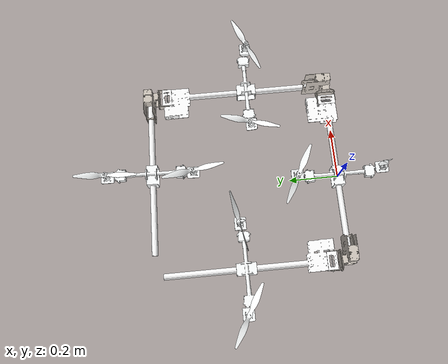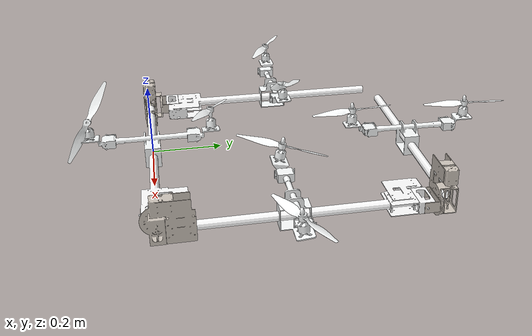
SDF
<sdf version='1.11'>
  <model name='dragon'>
    <static>true</static>
    <link name='base_link'>
      <gravity>false</gravity>
      <inertial>
        <pose>0.094083375991619769 0.31392124549819073 0.02355789200391184 0 0 0</pose>
        <mass>3.2123976475049201</mass>
        <inertia>
          <ixx>0.28615501559474132</ixx>
          <ixy>-0.076412822410160119</ixy>
          <ixz>0.0014552482556793301</ixz>
          <iyy>0.29996932674844812</iyy>
          <iyz>-0.001932335490017784</iyz>
          <izz>0.58140284867119696</izz>
        </inertia>
      </inertial>
      <collision name='base_link_collision'>
        <pose>0 0 0 0 0 0</pose>
        <geometry>
          <mesh>
            <scale>1 1 1</scale>
            <uri>model://serial-articulated/meshes/base_link.STL</uri>
          </mesh>
        </geometry>
      </collision>
      <collision name='base_link_fixed_joint_lump__joint1_pitch_collision_1'>
        <pose>0.41105000000000003 0.751 -0.042411999999999998 0 0.0012441000000000002 3.1415853071795872</pose>
        <geometry>
          <mesh>
            <scale>1 1 1</scale>
            <uri>model://serial-articulated/meshes/joint1_pitch.STL</uri>
          </mesh>
        </geometry>
      </collision>
      <collision name='base_link_fixed_joint_lump__joint1_yaw_collision_2'>
        <pose>0.45349657127694659 0.67999968816815959 0.0001408413459373786 1.570844099999992 -4.5698332895582894e-09 -1.570800000002843</pose>
        <geometry>
          <mesh>
            <scale>1 1 1</scale>
            <uri>model://serial-articulated/meshes/joint1_yaw.STL</uri>
          </mesh>
        </geometry>
      </collision>
      <collision name='base_link_fixed_joint_lump__Joint2_pitch_collision_3'>
        <pose>0.41104910643746267 -1.561125325677537e-07 -0.042414183327252913 -3.141541207179595 -4.569833366160561e-09 -1.5708000000028433</pose>
        <geometry>
          <mesh>
            <scale>1 1 1</scale>
            <uri>model://serial-articulated/meshes/Joint2_pitch.STL</uri>
          </mesh>
        </geometry>
      </collision>
      <collision name='base_link_fixed_joint_lump__joint2_yaw_collision_4'>
        <pose>0.33999376847548579 -0.042499894917988217 -5.8386109438382516e-06 1.570792657970653 5.1446410214871967e-05 3.1415853071769742</pose>
        <geometry>
          <mesh>
            <scale>1 1 1</scale>
            <uri>model://serial-articulated/meshes/joint2_yaw.STL</uri>
          </mesh>
        </geometry>
      </collision>
      <collision name='base_link_fixed_joint_lump__joint3_pitch_collision_5'>
        <pose>-0.34000373191817418 5.2565502569601463e-06 -0.042540666188315653 7.3420293452184246e-06 -4.4100000008085954e-05 -7.3463858662453209e-06</pose>
        <geometry>
          <mesh>
            <scale>1 1 1</scale>
            <uri>model://serial-articulated/meshes/joint3_pitch.STL</uri>
          </mesh>
        </geometry>
      </collision>
      <collision name='base_link_fixed_joint_lump__joint3_yaw_collision_6'>
        <pose>-0.38250508455758409 0.071005256745348522 -4.2019196704767843e-05 1.5707558999730218 -7.3418673495855403e-06 1.570792653937914</pose>
        <geometry>
          <mesh>
            <scale>1 1 1</scale>
            <uri>model://serial-articulated/meshes/joint3_yaw.STL</uri>
          </mesh>
        </geometry>
      </collision>
      <collision name='base_link_fixed_joint_lump__link4_arm_roll_collision_7'>
        <pose>-0.44000565494703281 0.41100513756288598 0.044958152457951851 -1.570724063884311 -0.97708531051172465 -1.5708598965289029</pose>
        <geometry>
          <mesh>
            <scale>1 1 1</scale>
            <uri>model://serial-articulated/meshes/link4_arm_roll.STL</uri>
          </mesh>
        </geometry>
      </collision>
      <collision name='base_link_fixed_joint_lump__link3_arm_roll_collision_8'>
        <pose>-7.4993181363725006e-06 0.1000024377774794 0.044977192357190332 -1.5707933537916741 -0.57554855358541879 3.1415876877894982</pose>
        <geometry>
          <mesh>
            <scale>1 1 1</scale>
            <uri>model://serial-articulated/meshes/link3_arm_roll.STL</uri>
          </mesh>
        </geometry>
      </collision>
      <collision name='base_link_fixed_joint_lump__link2_arm_roll_collision_9'>
        <pose>0.52060298715257469 -0.34000055835008391 -0.003260047929155345 2.2087640015835199 0.87206879575160012 -1.0545058706842991</pose>
        <geometry>
          <mesh>
            <scale>1 1 1</scale>
            <uri>model://serial-articulated/meshes/link2_arm_roll.STL</uri>
          </mesh>
        </geometry>
      </collision>
      <collision name='base_link_fixed_joint_lump__link1_arm_roll_collision_10'>
        <pose>0.751 -0.65100000000000002 0.044999999999999998 -1.5707999999999995 -0.97713000000000028 -3.1415853071795872</pose>
        <geometry>
          <mesh>
            <scale>1 1 1</scale>
            <uri>model://serial-articulated/meshes/link1_arm_roll.STL</uri>
          </mesh>
        </geometry>
      </collision>
      <visual name='base_link_visual'>
        <pose>0 0 0 0 0 0</pose>
        <geometry>
          <mesh>
            <scale>1 1 1</scale>
            <uri>model://serial-articulated/meshes/base_link.STL</uri>
          </mesh>
        </geometry>
        <material>
          <diffuse>1 1 1 1</diffuse>
          <ambient>1 1 1 1</ambient>
        </material>
      </visual>
      <visual name='base_link_fixed_joint_lump__joint1_pitch_visual_1'>
        <pose>0.41105000000000003 0.751 -0.042411999999999998 0 0.0012441000000000002 3.1415853071795872</pose>
        <geometry>
          <mesh>
            <scale>1 1 1</scale>
            <uri>model://serial-articulated/meshes/joint1_pitch.STL</uri>
          </mesh>
        </geometry>
        <material>
          <diffuse>0.808823526 0.774509847 0.735294163 1</diffuse>
          <ambient>0.808823526 0.774509847 0.735294163 1</ambient>
        </material>
      </visual>
      <visual name='base_link_fixed_joint_lump__joint1_yaw_visual_2'>
        <pose>0.45349657127694659 0.67999968816815959 0.0001408413459373786 1.570844099999992 -4.5698332895582894e-09 -1.570800000002843</pose>
        <geometry>
          <mesh>
            <scale>1 1 1</scale>
            <uri>model://serial-articulated/meshes/joint1_yaw.STL</uri>
          </mesh>
        </geometry>
        <material>
          <diffuse>1 1 1 1</diffuse>
          <ambient>1 1 1 1</ambient>
        </material>
      </visual>
      <visual name='base_link_fixed_joint_lump__Joint2_pitch_visual_3'>
        <pose>0.41104910643746267 -1.561125325677537e-07 -0.042414183327252913 -3.141541207179595 -4.569833366160561e-09 -1.5708000000028433</pose>
        <geometry>
          <mesh>
            <scale>1 1 1</scale>
            <uri>model://serial-articulated/meshes/Joint2_pitch.STL</uri>
          </mesh>
        </geometry>
        <material>
          <diffuse>0.808823526 0.774509847 0.735294163 1</diffuse>
          <ambient>0.808823526 0.774509847 0.735294163 1</ambient>
        </material>
      </visual>
      <visual name='base_link_fixed_joint_lump__joint2_yaw_visual_4'>
        <pose>0.33999376847548579 -0.042499894917988217 -5.8386109438382516e-06 1.570792657970653 5.1446410214871967e-05 3.1415853071769742</pose>
        <geometry>
          <mesh>
            <scale>1 1 1</scale>
            <uri>model://serial-articulated/meshes/joint2_yaw.STL</uri>
          </mesh>
        </geometry>
        <material>
          <diffuse>1 1 1 1</diffuse>
          <ambient>1 1 1 1</ambient>
        </material>
      </visual>
      <visual name='base_link_fixed_joint_lump__joint3_pitch_visual_5'>
        <pose>-0.34000373191817418 5.2565502569601463e-06 -0.042540666188315653 7.3420293452184246e-06 -4.4100000008085954e-05 -7.3463858662453209e-06</pose>
        <geometry>
          <mesh>
            <scale>1 1 1</scale>
            <uri>model://serial-articulated/meshes/joint3_pitch.STL</uri>
          </mesh>
        </geometry>
        <material>
          <diffuse>0.808823526 0.774509847 0.735294163 1</diffuse>
          <ambient>0.808823526 0.774509847 0.735294163 1</ambient>
        </material>
      </visual>
      <visual name='base_link_fixed_joint_lump__joint3_yaw_visual_6'>
        <pose>-0.38250508455758409 0.071005256745348522 -4.2019196704767843e-05 1.5707558999730218 -7.3418673495855403e-06 1.570792653937914</pose>
        <geometry>
          <mesh>
            <scale>1 1 1</scale>
            <uri>model://serial-articulated/meshes/joint3_yaw.STL</uri>
          </mesh>
        </geometry>
        <material>
          <diffuse>1 1 1 1</diffuse>
          <ambient>1 1 1 1</ambient>
        </material>
      </visual>
      <visual name='base_link_fixed_joint_lump__link4_arm_roll_visual_7'>
        <pose>-0.44000565494703281 0.41100513756288598 0.044958152457951851 -1.570724063884311 -0.97708531051172465 -1.5708598965289029</pose>
        <geometry>
          <mesh>
            <scale>1 1 1</scale>
            <uri>model://serial-articulated/meshes/link4_arm_roll.STL</uri>
          </mesh>
        </geometry>
        <material>
          <diffuse>0.990196109 1 1 1</diffuse>
          <ambient>0.990196109 1 1 1</ambient>
        </material>
      </visual>
      <visual name='base_link_fixed_joint_lump__link3_arm_roll_visual_8'>
        <pose>-7.4993181363725006e-06 0.1000024377774794 0.044977192357190332 -1.5707933537916741 -0.57554855358541879 3.1415876877894982</pose>
        <geometry>
          <mesh>
            <scale>1 1 1</scale>
            <uri>model://serial-articulated/meshes/link3_arm_roll.STL</uri>
          </mesh>
        </geometry>
        <material>
          <diffuse>0.990196109 1 1 1</diffuse>
          <ambient>0.990196109 1 1 1</ambient>
        </material>
      </visual>
      <visual name='base_link_fixed_joint_lump__link2_arm_roll_visual_9'>
        <pose>0.52060298715257469 -0.34000055835008391 -0.003260047929155345 2.2087640015835199 0.87206879575160012 -1.0545058706842991</pose>
        <geometry>
          <mesh>
            <scale>1 1 1</scale>
            <uri>model://serial-articulated/meshes/link2_arm_roll.STL</uri>
          </mesh>
        </geometry>
        <material>
          <diffuse>0.990196109 1 1 1</diffuse>
          <ambient>0.990196109 1 1 1</ambient>
        </material>
      </visual>
      <visual name='base_link_fixed_joint_lump__link1_arm_roll_visual_10'>
        <pose>0.751 -0.65100000000000002 0.044999999999999998 -1.5707999999999995 -0.97713000000000028 -3.1415853071795872</pose>
        <geometry>
          <mesh>
            <scale>1 1 1</scale>
            <uri>model://serial-articulated/meshes/link1_arm_roll.STL</uri>
          </mesh>
        </geometry>
        <material>
          <diffuse>0.990196109 1 1 1</diffuse>
          <ambient>0.990196109 1 1 1</ambient>
        </material>
      </visual>
    </link>
    <joint name='link4_left_prop' type='revolute'>
      <pose relative_to='base_link'>-0.51330839277215479 0.41921974724216832 0.1134260191923436 0.020518361402719645 -3.7382211264238785e-05 -1.6182129218475649e-06</pose>
      <parent>base_link</parent>
      <child>link4_left_spin</child>
      <axis>
        <xyz>-0.16991000000000001 -0.020216999999999999 -0.98524999999999996</xyz>
        <limit>
          <lower>-inf</lower>
          <upper>inf</upper>
        </limit>
        <dynamics>
          <spring_reference>0</spring_reference>
          <spring_stiffness>0</spring_stiffness>
        </dynamics>
      </axis>
    </joint>
    <link name='link4_left_spin'>
      <gravity>false</gravity>
      <pose relative_to='link4_left_prop'>0 0 0 0 0 0</pose>
      <inertial>
        <pose>5.0936339579532596e-07 -2.54296163793022e-07 0.0043082663718138998 0 0 0</pose>
        <mass>0.0119145296235532</mass>
        <inertia>
          <ixx>4.7986214125918196e-06</ixx>
          <ixy>8.2875678609994599e-06</ixy>
          <ixz>-3.01248004075787e-12</ixz>
          <iyy>1.6077422263507501e-05</iyy>
          <iyz>3.6697308298421497e-12</iyz>
          <izz>2.05873107453045e-05</izz>
        </inertia>
      </inertial>
      <collision name='link4_left_spin_collision'>
        <pose>0 0 0 0 0 0</pose>
        <geometry>
          <mesh>
            <scale>1 1 1</scale>
            <uri>model://serial-articulated/meshes/link4_left_spin.STL</uri>
          </mesh>
        </geometry>
      </collision>
      <visual name='link4_left_spin_visual'>
        <pose>0 0 0 0 0 0</pose>
        <geometry>
          <mesh>
            <scale>1 1 1</scale>
            <uri>model://serial-articulated/meshes/link4_left_spin.STL</uri>
          </mesh>
        </geometry>
        <material>
          <diffuse>0.990196109 1 1 1</diffuse>
          <ambient>0.990196109 1 1 1</ambient>
        </material>
      </visual>
    </link>
    <joint name='link4_right_prop' type='revolute'>
      <pose relative_to='base_link'>-0.1667084152247883 0.41703619126012342 0.1137900761089965 2.0064889848413379 4.3471432481843853e-05 3.141586925495131</pose>
      <parent>base_link</parent>
      <child>link4_right_spin</child>
      <axis>
        <xyz>0 0 1</xyz>
        <limit>
          <lower>-inf</lower>
          <upper>inf</upper>
        </limit>
        <dynamics>
          <spring_reference>0</spring_reference>
          <spring_stiffness>0</spring_stiffness>
        </dynamics>
      </axis>
    </joint>
    <link name='link4_right_spin'>
      <gravity>false</gravity>
      <pose relative_to='link4_right_prop'>0 0 0 0 0 0</pose>
      <inertial>
        <pose>-5.1206361684208403e-07 2.5467935299561299e-07 0.0043082716485359097 0 0 0</pose>
        <mass>0.0119145517108038</mass>
        <inertia>
          <ixx>4.7924512653397898e-06</ixx>
          <ixy>8.2834104069104198e-06</ixy>
          <ixz>2.9489363863815699e-12</ixz>
          <iyy>1.6083761369675499e-05</iyy>
          <iyz>-3.6326338387179999e-12</iyz>
          <izz>2.0587479692032001e-05</izz>
        </inertia>
      </inertial>
      <collision name='link4_right_spin_collision'>
        <pose>0 0 0 0 0 0</pose>
        <geometry>
          <mesh>
            <scale>1 1 1</scale>
            <uri>model://serial-articulated/meshes/link4_right_spin.STL</uri>
          </mesh>
        </geometry>
      </collision>
      <visual name='link4_right_spin_visual'>
        <pose>0 0 0 0 0 0</pose>
        <geometry>
          <mesh>
            <scale>1 1 1</scale>
            <uri>model://serial-articulated/meshes/link4_right_spin.STL</uri>
          </mesh>
        </geometry>
        <material>
          <diffuse>0.990196109 1 1 1</diffuse>
          <ambient>0.990196109 1 1 1</ambient>
        </material>
      </visual>
    </link>
    <joint name='link3_left_prop' type='revolute'>
      <pose relative_to='base_link'>0.0049719485355487758 -0.1732974074060156 0.1137365291395516 1.2187522267817741 4.4933414887911241e-06 1.570789897756357</pose>
      <parent>base_link</parent>
      <child>link3_left_spin</child>
      <axis>
        <xyz>0 0 1</xyz>
        <limit>
          <lower>-inf</lower>
          <upper>inf</upper>
        </limit>
        <dynamics>
          <spring_reference>0</spring_reference>
          <spring_stiffness>0</spring_stiffness>
        </dynamics>
      </axis>
    </joint>
    <link name='link3_left_spin'>
      <gravity>false</gravity>
      <pose relative_to='link3_left_prop'>0 0 0 0 0 0</pose>
      <inertial>
        <pose>2.73046578846969e-07 5.7386769990522301e-07 0.0043082117476412598 0 0 0</pose>
        <mass>0.0119147088004385</mass>
        <inertia>
          <ixx>1.6263983374953499e-05</ixx>
          <ixy>-8.1584660418568499e-06</ixy>
          <ixz>-2.9217991626821201e-12</ixz>
          <iyy>4.6130560183606898e-06</iyy>
          <iyz>1.7470016448315399e-14</iyz>
          <izz>2.05883046094045e-05</izz>
        </inertia>
      </inertial>
      <collision name='link3_left_spin_collision'>
        <pose>0 0 0 0 0 0</pose>
        <geometry>
          <mesh>
            <scale>1 1 1</scale>
            <uri>model://serial-articulated/meshes/link3_left_spin.STL</uri>
          </mesh>
        </geometry>
      </collision>
      <visual name='link3_left_spin_visual'>
        <pose>0 0 0 0 0 0</pose>
        <geometry>
          <mesh>
            <scale>1 1 1</scale>
            <uri>model://serial-articulated/meshes/link3_left_spin.STL</uri>
          </mesh>
        </geometry>
        <material>
          <diffuse>0.990196109 1 1 1</diffuse>
          <ambient>0.990196109 1 1 1</ambient>
        </material>
      </visual>
    </link>
    <joint name='link3_right_prop' type='revolute'>
      <pose relative_to='base_link'>-0.0020576579648598492 0.17330261295149799 0.1124623350330531 0.17075511961306233 -4.9472677211839035e-07 -1.5707965929750671</pose>
      <parent>base_link</parent>
      <child>link3_right_spin</child>
      <axis>
        <xyz>0 0 1</xyz>
        <limit>
          <lower>-inf</lower>
          <upper>inf</upper>
        </limit>
        <dynamics>
          <spring_reference>0</spring_reference>
          <spring_stiffness>0</spring_stiffness>
        </dynamics>
      </axis>
    </joint>
    <link name='link3_right_spin'>
      <gravity>false</gravity>
      <pose relative_to='link3_right_prop'>0 0 0 0 0 0</pose>
      <inertial>
        <pose>-2.5617679511036302e-07 -5.6628507827741204e-07 0.0043082696237262503 0 0 0</pose>
        <mass>0.011914607071025299</mass>
        <inertia>
          <ixx>1.6501820132457999e-05</ixx>
          <ixy>-7.9825401941668902e-06</ixy>
          <ixz>3.5403624003570002e-12</ixz>
          <iyy>4.3744678562245803e-06</iyy>
          <iyz>5.6472291988431999e-13</iyz>
          <izz>2.0587553991969399e-05</izz>
        </inertia>
      </inertial>
      <collision name='link3_right_spin_collision'>
        <pose>0 0 0 0 0 0</pose>
        <geometry>
          <mesh>
            <scale>1 1 1</scale>
            <uri>model://serial-articulated/meshes/link3_right_spin.STL</uri>
          </mesh>
        </geometry>
      </collision>
      <visual name='link3_right_spin_visual'>
        <pose>0 0 0 0 0 0</pose>
        <geometry>
          <mesh>
            <scale>1 1 1</scale>
            <uri>model://serial-articulated/meshes/link3_right_spin.STL</uri>
          </mesh>
        </geometry>
        <material>
          <diffuse>0.990196109 1 1 1</diffuse>
          <ambient>0.990196109 1 1 1</ambient>
        </material>
      </visual>
    </link>
    <joint name='link2_left_prop' type='revolute'>
      <pose relative_to='base_link'>0.23834250895801509 0.34316174007101441 0.11378723595809059 2.9543414902628502 0.0057539083742912311 -5.6043909901602051e-06</pose>
      <parent>base_link</parent>
      <child>link2_left_spin</child>
      <axis>
        <xyz>0 0 1</xyz>
        <limit>
          <lower>-inf</lower>
          <upper>inf</upper>
        </limit>
        <dynamics>
          <spring_reference>0</spring_reference>
          <spring_stiffness>0</spring_stiffness>
        </dynamics>
      </axis>
    </joint>
    <link name='link2_left_spin'>
      <gravity>false</gravity>
      <pose relative_to='link2_left_prop'>0 0 0 0 0 0</pose>
      <inertial>
        <pose>1.75439487964946e-07 -5.4595662946077497e-07 0.0043082238273990398 0 0 0</pose>
        <mass>0.0119146770370482</mass>
        <inertia>
          <ixx>1.7897955188503798e-05</ixx>
          <ixy>6.6961122712129901e-06</ixy>
          <ixz>-2.9382143107992398e-13</ixz>
          <iyy>2.9782851323175499e-06</iyy>
          <iyz>7.1775198346959003e-12</iyz>
          <izz>2.0587501473632701e-05</izz>
        </inertia>
      </inertial>
      <collision name='link2_left_spin_collision'>
        <pose>0 0 0 0 0 0</pose>
        <geometry>
          <mesh>
            <scale>1 1 1</scale>
            <uri>model://serial-articulated/meshes/link2_left_spin.STL</uri>
          </mesh>
        </geometry>
      </collision>
      <visual name='link2_left_spin_visual'>
        <pose>0 0 0 0 0 0</pose>
        <geometry>
          <mesh>
            <scale>1 1 1</scale>
            <uri>model://serial-articulated/meshes/link2_left_spin.STL</uri>
          </mesh>
        </geometry>
        <material>
          <diffuse>0.990196109 1 1 1</diffuse>
          <ambient>0.990196109 1 1 1</ambient>
        </material>
      </visual>
    </link>
    <joint name='link2_right_prop' type='revolute'>
      <pose relative_to='base_link'>0.58494518876901802 0.32389280942058479 0.11227225760167719 3.0470002275566439 7.9405578916000359e-05 -3.080791835178275</pose>
      <parent>base_link</parent>
      <child>link2_right_spin</child>
      <axis>
        <xyz>0 0 1</xyz>
        <limit>
          <lower>-inf</lower>
          <upper>inf</upper>
        </limit>
        <dynamics>
          <spring_reference>0</spring_reference>
          <spring_stiffness>0</spring_stiffness>
        </dynamics>
      </axis>
    </joint>
    <link name='link2_right_spin'>
      <gravity>false</gravity>
      <pose relative_to='link2_right_prop'>0 0 0 0 0 0</pose>
      <inertial>
        <pose>-5.5534239007393204e-07 1.5379311291141599e-07 0.0043082113420697104 0 0 0</pose>
        <mass>0.0119145275478498</mass>
        <inertia>
          <ixx>2.4788926237237398e-06</ixx>
          <ixy>6.09419636431981e-06</ixy>
          <ixz>-2.6916859631944099e-13</ixz>
          <iyy>1.83970876472519e-05</iyy>
          <iyz>-9.8340209359989906e-13</iyz>
          <izz>2.0587245953127e-05</izz>
        </inertia>
      </inertial>
      <collision name='link2_right_spin_collision'>
        <pose>0 0 0 0 0 0</pose>
        <geometry>
          <mesh>
            <scale>1 1 1</scale>
            <uri>model://serial-articulated/meshes/link2_right_spin.STL</uri>
          </mesh>
        </geometry>
      </collision>
      <visual name='link2_right_spin_visual'>
        <pose>0 0 0 0 0 0</pose>
        <geometry>
          <mesh>
            <scale>1 1 1</scale>
            <uri>model://serial-articulated/meshes/link2_right_spin.STL</uri>
          </mesh>
        </geometry>
        <material>
          <diffuse>0.990196109 1 1 1</diffuse>
          <ambient>0.990196109 1 1 1</ambient>
        </material>
      </visual>
    </link>
    <joint name='link1_left_prop' type='revolute'>
      <pose relative_to='base_link'>0.054490834877236487 0.58599686395884754 0.11307280261578601 3.100134070008949 -3.1719221314626014e-05 1.5473043204294201</pose>
      <parent>base_link</parent>
      <child>link1_left_spin</child>
      <axis>
        <xyz>0 0.049088 -0.99878999999999996</xyz>
        <limit>
          <lower>-inf</lower>
          <upper>inf</upper>
        </limit>
        <dynamics>
          <spring_reference>0</spring_reference>
          <spring_stiffness>0</spring_stiffness>
        </dynamics>
      </axis>
    </joint>
    <link name='link1_left_spin'>
      <gravity>false</gravity>
      <pose relative_to='link1_left_prop'>0 0 0 0 0 0</pose>
      <inertial>
        <pose>-6.6576237556237295e-07 7.51971221471526e-08 0.0043082201008794296 0 0 0</pose>
        <mass>0.011914561956256399</mass>
        <inertia>
          <ixx>8.9256336721573604e-07</ixx>
          <ixy>3.06123858172512e-06</ixy>
          <ixz>5.6671762227492601e-12</ixz>
          <iyy>1.99835060436476e-05</iyy>
          <iyz>1.6706195567005999e-12</iyz>
          <izz>2.0587338830599999e-05</izz>
        </inertia>
      </inertial>
      <collision name='link1_left_spin_collision'>
        <pose>0 0 0 0 0 0</pose>
        <geometry>
          <mesh>
            <scale>1 1 1</scale>
            <uri>model://serial-articulated/meshes/link1_left_spin.STL</uri>
          </mesh>
        </geometry>
      </collision>
      <visual name='link1_left_spin_visual'>
        <pose>0 0 0 0 0 0</pose>
        <geometry>
          <mesh>
            <scale>1 1 1</scale>
            <uri>model://serial-articulated/meshes/link1_left_spin.STL</uri>
          </mesh>
        </geometry>
        <material>
          <diffuse>0.990196109 1 1 1</diffuse>
          <ambient>0.990196109 1 1 1</ambient>
        </material>
      </visual>
    </link>
    <joint name='link1_right_prop' type='revolute'>
      <pose relative_to='base_link'>0.066010589885560411 0.93249691248709943 0.113574215087704 3.1338385870735519 3.1421936024115987e-05 -1.5942883335337443</pose>
      <parent>base_link</parent>
      <child>link1_right_spin</child>
      <axis>
        <xyz>-0.18626999999999999 0.0062962000000000001 -0.98248000000000002</xyz>
        <limit>
          <lower>-inf</lower>
          <upper>inf</upper>
        </limit>
        <dynamics>
          <spring_reference>0</spring_reference>
          <spring_stiffness>0</spring_stiffness>
        </dynamics>
      </axis>
    </joint>
    <link name='link1_right_spin'>
      <gravity>false</gravity>
      <pose relative_to='link1_right_prop'>0 0 0 0 0 0</pose>
      <inertial>
        <pose>6.9315839235084595e-07 6.2994502919577795e-08 0.00430821663494839 0 0 0</pose>
        <mass>0.0119145513741783</mass>
        <inertia>
          <ixx>4.7611968447637199e-07</ixx>
          <ixy>-1.11645184011423e-06</ixy>
          <ixz>-5.1518207968535502e-12</ixz>
          <iyy>2.0399736262995001e-05</iyy>
          <iyz>-2.9852301022851101e-12</iyz>
          <izz>2.05871235175461e-05</izz>
        </inertia>
      </inertial>
      <collision name='link1_right_spin_collision'>
        <pose>0 0 0 0 0 0</pose>
        <geometry>
          <mesh>
            <scale>1 1 1</scale>
            <uri>model://serial-articulated/meshes/link1_right_spin.STL</uri>
          </mesh>
        </geometry>
      </collision>
      <visual name='link1_right_spin_visual'>
        <pose>0 0 0 0 0 0</pose>
        <geometry>
          <mesh>
            <scale>1 1 1</scale>
            <uri>model://serial-articulated/meshes/link1_right_spin.STL</uri>
          </mesh>
        </geometry>
        <material>
          <diffuse>0.990196109 1 1 1</diffuse>
          <ambient>0.990196109 1 1 1</ambient>
        </material>
      </visual>
    </link>
    <frame name='link4_cross_arm' attached_to='joint3_yaw'>
      <pose>0.34000000000000002 0.044999999999999998 -0.057500000000000002 0 0 2.1644999999999999</pose>
    </frame>
    <frame name='link4_arm_roll' attached_to='link4_cross_arm'>
      <pose>0 0 0 0 0 0</pose>
    </frame>
    <frame name='link4_main_tube' attached_to='joint3_pitch'>
      <pose>-0.042500000000000003 0.070999999999999994 0.042500000000000003 1.5708 -5.5511151231257827e-17 1.5708</pose>
    </frame>
    <frame name='joint3_yaw' attached_to='link4_main_tube'>
      <pose>0 0 0 0 0 0</pose>
    </frame>
    <frame name='Joint3_dummy' attached_to='joint2_yaw'>
      <pose>0.68000000000000005 -0.042500000000000003 0.042500000000000003 1.5708 -4.2351647362715017e-22 -3.1415853071795872</pose>
    </frame>
    <frame name='joint3_pitch' attached_to='Joint3_dummy'>
      <pose>0 0 0 0 0 0</pose>
    </frame>
    <frame name='link3_cross_arm' attached_to='joint2_yaw'>
      <pose>0.34000000000000002 0.044999999999999998 0.14249999999999999 -3.1415853071795872 -8.4703294725430034e-22 0.57560000000000033</pose>
    </frame>
    <frame name='link3_arm_roll' attached_to='link3_cross_arm'>
      <pose>0 0 0 0 0 0</pose>
    </frame>
    <frame name='link3_main_tube' attached_to='Joint2_pitch'>
      <pose>0.042500000000000003 0.071053000000000005 -0.042411999999999998 -1.5708 5.5511151231257827e-17 1.5708</pose>
    </frame>
    <frame name='joint2_yaw' attached_to='link3_main_tube'>
      <pose>0 0 0 0 0 0</pose>
    </frame>
    <frame name='joint2_dummy' attached_to='joint1_yaw'>
      <pose>0.68000000000000005 -0.042553000000000001 0.042446999999999999 1.5708 0 0</pose>
    </frame>
    <frame name='Joint2_pitch' attached_to='joint2_dummy'>
      <pose>0 0 0 0 0 0</pose>
    </frame>
    <frame name='link2_cross_arm' attached_to='joint1_yaw'>
      <pose>1.02 -0.0034041000000000002 -0.067110000000000003 0.22793999999999984 0.32310000000000022 -0.93982999999999994</pose>
    </frame>
    <frame name='link2_arm_roll' attached_to='link2_cross_arm'>
      <pose>0 0 0 0 0 0</pose>
    </frame>
    <frame name='link2_main_tube' attached_to='joint1_pitch'>
      <pose>-0.042500000000000003 0.070999999999999994 0.042500000000000003 1.5696000000000001 -5.5511151231257827e-17 1.5708</pose>
    </frame>
    <frame name='joint1_yaw' attached_to='link2_main_tube'>
      <pose>0 0 0 0 0 0</pose>
    </frame>
    <frame name='joint1_dummy' attached_to='base_link'>
      <pose>0.41105000000000003 0.751 -0.042411999999999998 0 0.0012441000000000002 3.1415853071795872</pose>
    </frame>
    <frame name='joint1_pitch' attached_to='joint1_dummy'>
      <pose>0 0 0 0 0 0</pose>
    </frame>
    <frame name='link1_cross_arm' attached_to='base_link'>
      <pose>0.751 -0.65100000000000002 0.044999999999999998 -1.5707999999999993 -0.97713000000000028 -3.1415853071795872</pose>
    </frame>
    <frame name='link1_arm_roll' attached_to='link1_cross_arm'>
      <pose>0 0 0 0 0 0</pose>
    </frame>

  </model>
</sdf>
